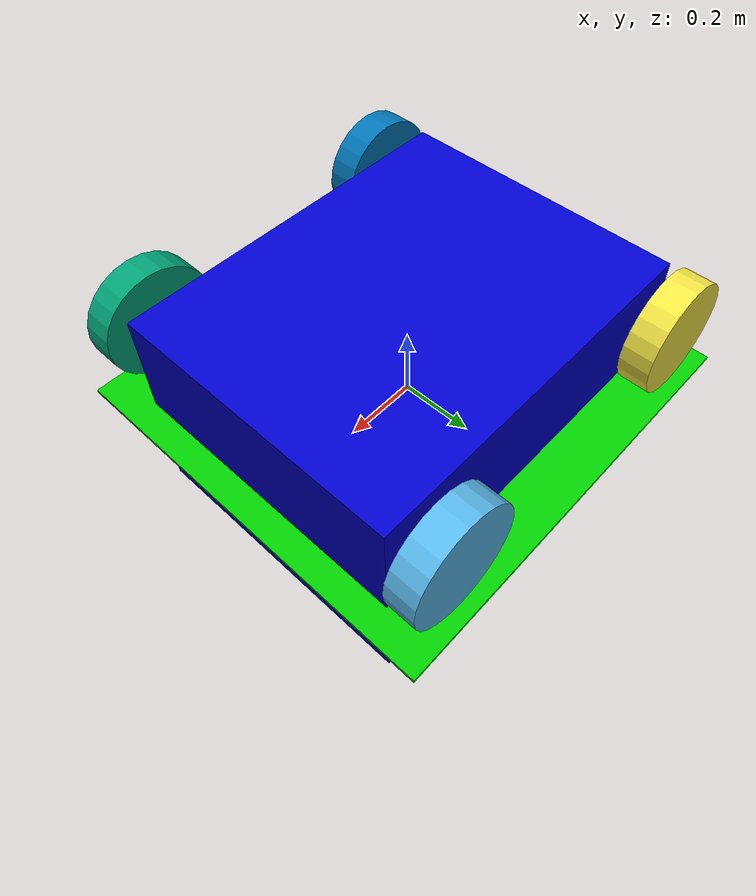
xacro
<?xml version="1.0" encoding="UTF-8" ?>
<!--this file is to define a robot base with four wheels and the robot is axis symmertric about its centre-->
<robot name="prototype3" xmlns:xacro="http://wwww.ros.org/wiki/xacro">
<!--    length of robot chassis-->
    <xacro:property name="robot_length" value="1.0"/>
<!--    width of robot chassis-->
    <xacro:property name="robot_width" value="0.8"/>
<!--    height of robot chassis-->
    <xacro:property name="robot_height" value="0.6"/>
<!--    distance between axis of front wheel to front surface-->
    <xacro:property name="front_wheel_horizontal_distance" value="0.1"/>
<!--    distance between axis of front wheel to bottom surface -->
    <xacro:property name="front_wheel_vertical_distance" value="0.1"/>
<!--    distance between front wheel centre to side surface-->
    <xacro:property name="front_wheel_offset" value="0.08"/>
<!--    radius of front wheel-->
    <xacro:property name="front_wheel_radius" value="0.15"/>
<!--    front wheel thickness-->
    <xacro:property name="front_wheel_thickness" value="0.08"/>
    <!--    distance between axis of rear wheel to front surface-->
    <xacro:property name="rear_wheel_horizontal_distance" value="0.1"/>
    <!--    distance between axis of rear wheel to bottom surface -->
    <xacro:property name="rear_wheel_vertical_distance" value="0.1"/>
    <!--    distance between rear wheel centre to side surface-->
    <xacro:property name="rear_wheel_offset" value="0.08"/>
<!--    radius of rear wheel-->
    <xacro:property name="rear_wheel_radius" value="0.15"/>
    <!--    rear wheel thickness-->
    <xacro:property name="rear_wheel_thickness" value="0.08"/>

<!--    There is no need to touch the rest code-->
<!--    for front wheels only-->
    <xacro:property name="front_positionX" value="${1/2*robot_length-front_wheel_horizontal_distance}"/>
    <xacro:property name="front_positionY" value="${1/2*robot_width+front_wheel_offset}"/>
    <xacro:property name="front_positionZ" value="${1/2*robot_height-front_wheel_vertical_distance}"/>

<!--    for back wheels only-->
    <xacro:property name="rear_positionX" value="${-1/2*robot_length+rear_wheel_horizontal_distance}"/>
    <xacro:property name="rear_positionY" value="${1/2*robot_width+rear_wheel_offset}"/>
    <xacro:property name="rear_positionZ" value="${1/2*robot_height-rear_wheel_vertical_distance}"/>

    <!--    adding the chassis-->
    <xacro:include filename="$(find mobileman_navigation)/urdf/chassis_flexible.xacro"/>
    <xacro:chassis length="${robot_length}" width="${robot_width}" height="${robot_height}"/>
<!--adding wheels-->
<!--    x direction is front, y direction is left, z direction is upward-->
    <xacro:include filename="$(find mobileman_navigation)/urdf/configurable_wheels.xacro"/>
    <xacro:wheel name="front_left" radius="${front_wheel_radius}" thickness="${front_wheel_thickness}" positionX="${front_positionX}" positionY="${front_positionY}" positionZ="${front_positionZ}"/>
    <xacro:wheel name="front_right" radius="${front_wheel_radius}" thickness="${front_wheel_thickness}" positionX="${front_positionX}" positionY="${front_positionY*(-1)}" positionZ="${front_positionZ}"/>
    <xacro:wheel name="rear_left" radius="${rear_wheel_radius}" thickness="${rear_wheel_thickness}" positionX="${rear_positionX}" positionY="${rear_positionY}" positionZ="${rear_positionZ}"/>
    <xacro:wheel name="rear_right" radius="${rear_wheel_radius}" thickness="${rear_wheel_thickness}" positionX="${rear_positionX}" positionY="${rear_positionY*(-1)}" positionZ="${rear_positionZ}"/>

<!--    adding base_footprint-->
    <xacro:include filename="$(find mobileman_navigation)/urdf/configurable_wheels.xacro"/>
    <xacro:include filename="$(find mobileman_navigation)/urdf/base_footprint.xacro"/>
<!--    base foot_print length-->
    <xacro:property name="footprint_length" value="${front_positionX - rear_positionX + front_wheel_radius +  rear_wheel_radius + 0.05}"/>
<!--base footprint width, determined by the larger edge-to-edge distance of front wheels vs rear wheels-->
    <xacro:if value="${(front_positionY + 1/2 * front_wheel_thickness)>=(rear_positionY + 1/2 * rear_wheel_thickness)}">
    <xacro:property name="footprint_width" value="${2 * front_positionY +  front_wheel_thickness + 0.05}"/>
    </xacro:if>
    <xacro:unless value="${(front_positionY + 1/2 * front_wheel_thickness)>=(rear_positionY + 1/2 * rear_wheel_thickness)}">
      <xacro:property name="footprint_width" value="${2 * rear_positionY + rear_wheel_thickness + 0.05}"/>
    </xacro:unless>
<!--    the position of footprint, locationed at the lowest point of the vehicle-->
  <xacro:property name="footprint_positionZ" value="${front_positionZ - front_wheel_radius}"/>

  <xacro:base_footprint length ="${footprint_length}" width="${footprint_width}" positionZ="${footprint_positionZ}"/>

</robot>

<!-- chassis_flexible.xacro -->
<robot xmlns:xacro="https://www.ros.org/wiki/xacro">
    <material name="blue">
        <color rgba="0 0 0.8 1"/>
    </material>
    <material name="red">
        <color rgba="0.8 0 0 1"/>
    </material>
    <material name="green">
        <color rgba="0 0.8 0 1"/>
    </material>
    <xacro:macro name="chassis" params="length width height">
        <link name="base_link">
<!--            ignoring inertial for rviz model-->
            <!--        adding visual result-->
            <visual name="chassis_visual">
                <origin rpy="0 0 0" xyz="0 0 0" />
                <geometry>
                    <box size="${length} ${width} ${height}"/>
                </geometry>
                <material name="blue"/>
            </visual>
        </link>

<!--        adding wheels-->

    </xacro:macro>
</robot>

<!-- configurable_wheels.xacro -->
<robot xmlns:xacro="http://www.ros.org/wiki/xacro">
    <xacro:macro name="wheel" params="name radius thickness positionX positionY positionZ">
        <link name="${name}_link">
            <!--           ignoring inertia for rviz-->
            <!--                        iyy="${1/12 * 8 * (3 * radius * radius + 0.085 * 0.085)}"-->
            <!--                        iyz="0"-->

            <!--       adding visual effect-->
            <visual>
                <origin rpy="1.57 0 0" xyz="0 0 0"/>
                <geometry>
                    <cylinder length="${thickness}" radius="${radius}"/>
                </geometry>
            </visual>

            <!--           ignoring collision for rviz -->

        </link>
        <joint name="${name}_joint" type="continuous">
            <origin rpy="0 0 0" xyz="${positionX} ${positionY} ${positionZ}"/>
            <child link="${name}_link"/>
            <parent link="base_link"/>
            <axis rpy="0 0 0" xyz="0 1 0"/>
            <!--          ignoring dynamic parameters for rviz-->
        </joint>
    </xacro:macro>
</robot>

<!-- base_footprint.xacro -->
<robot xmlns:xacro="http://www.ros.org/wiki/xacro">
    <xacro:macro name="base_footprint" params="length width positionZ">
        <link name="base_footprint">
            <visual>
                <origin rpy="0 0 0" xyz="0 0 ${positionZ}"/>
                <geometry>
                    <box size="${length} ${width} 0.01"/>
                </geometry>
                <material name="green"/>
            </visual>
        </link>
        <joint name="base_footprint_joint" type="fixed">
                <parent link="base_footprint"/>
                <child link="base_link"/>
                <origin rpy="0 0 0" xyz="0 0 ${positionZ}"/>
        </joint>
    </xacro:macro>
</robot>
